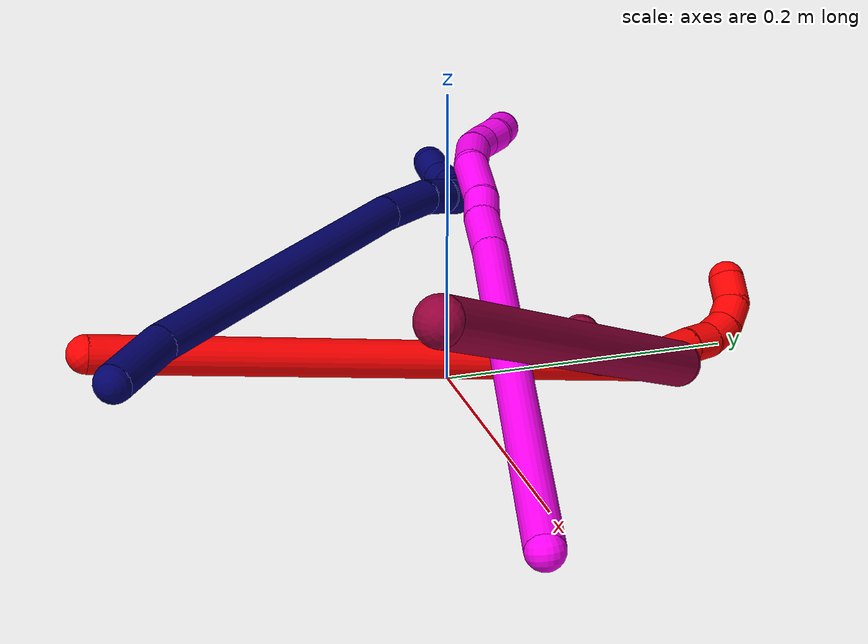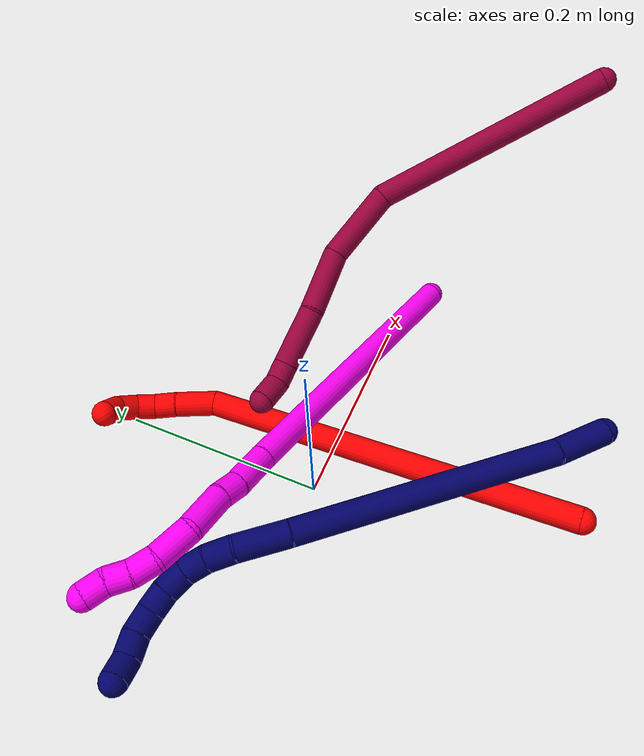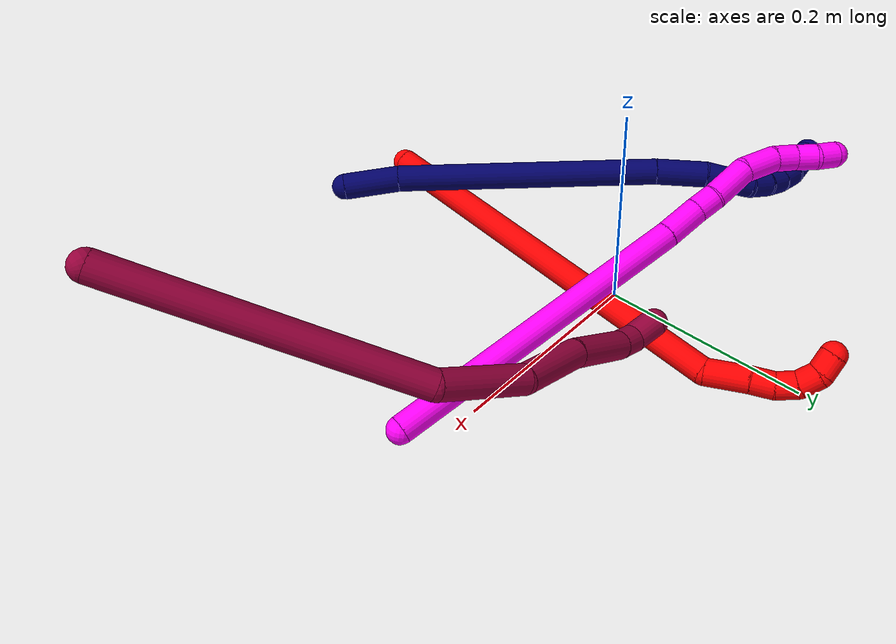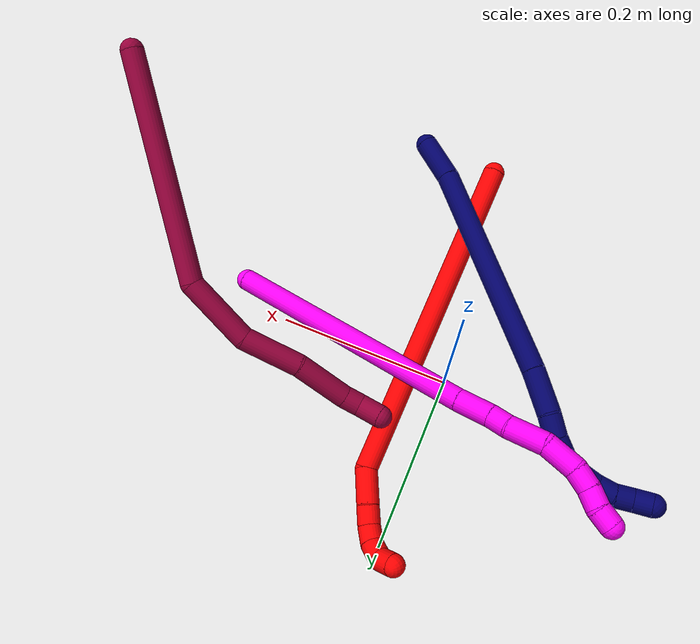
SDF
<sdf version="1.7">
 <world name="default">
  <model name="photoneo_s_sensor">
   <static>1</static>
   <pose>0 0 2 1.57079 1.57079 3.14159</pose>
   <link name="link">
    <inertial><mass>0.1</mass></inertial>
    <sensor name="sensor" type="depth">
     <update_rate>30</update_rate>
     <camera>
      <horizontal_fov>1.22</horizontal_fov>
      <image><width>1920</width><height>1200</height><format>B8G8R8</format></image>
      <clip><near>0.1</near><far>4</far></clip>
      <depth_camera><output>points</output></depth_camera>
     </camera>
     <plugin name="camera_plugin" filename="libgazebo_ros_depth_camera.so">
      <baseline>0.2</baseline>
      <alwaysOn>1</alwaysOn>
      <updateRate>0.0</updateRate>
      <cameraName>camera_ir</cameraName>
      <imageTopicName>/camera/color/image_raw</imageTopicName>
      <cameraInfoTopicName>/camera/color/camera_info</cameraInfoTopicName>
      <depthImageTopicName>/camera/depth/image_raw</depthImageTopicName>
      <depthImageCameraInfoTopicName>/camera/depth/camera_info</depthImageCameraInfoTopicName>
      <pointCloudTopicName>/camera/depth/points</pointCloudTopicName>
      <frameName>fr_optical</frameName>
      <pointCloudCutoff>0.1</pointCloudCutoff>
      <pointCloudCutoffMax>2.0</pointCloudCutoffMax>
      <distortionK1>0</distortionK1>
      <distortionK2>0</distortionK2>
      <distortionK3>0</distortionK3>
      <distortionT1>0</distortionT1>
      <distortionT2>0</distortionT2>
      <CxPrime>0</CxPrime>
      <Cx>0</Cx>
      <Cy>0</Cy>
      <focalLength>0</focalLength>
      <hackBaseline>0</hackBaseline>
     </plugin>
    </sensor>
   </link>
  </model>
  <model name="bin">
   <static>1</static>
   <link name="bottom">
    <collision name="collision-bottom">
     <pose>0 0 -0.01 0 -0 0</pose>
     <geometry><box><size>0.8 0.6 0.02</size></box></geometry>
     <surface>
      <friction><ode><mu>100</mu><mu2>100</mu2></ode></friction>
      <contact><collide_bitmask>65535</collide_bitmask></contact>
     </surface>
    </collision>
   </link>
   <link name="west_wall">
    <collision name="collision-west_wall">
     <pose>-0.41 0 0.1 0 -0 0</pose>
     <geometry><box><size>0.02 0.6 0.2</size></box></geometry>
     <surface>
      <friction><ode><mu>100</mu><mu2>100</mu2></ode></friction>
      <contact><collide_bitmask>65535</collide_bitmask></contact>
     </surface>
    </collision>
   </link>
   <link name="east_wall">
    <collision name="collision-east_wall">
     <pose>0.41 0 0.1 0 -0 0</pose>
     <geometry><box><size>0.02 0.6 0.2</size></box></geometry>
     <surface>
      <friction><ode><mu>100</mu><mu2>100</mu2></ode></friction>
      <contact><collide_bitmask>65535</collide_bitmask></contact>
     </surface>
    </collision>
   </link>
   <link name="south_wall">
    <collision name="collision-south_wall">
     <pose>0 -0.31 0.1 0 -0 0</pose>
     <geometry><box><size>0.8 0.02 0.2</size></box></geometry>
     <surface>
      <friction><ode><mu>100</mu><mu2>100</mu2></ode></friction>
      <contact><collide_bitmask>65535</collide_bitmask></contact>
     </surface>
    </collision>
   </link>
   <link name="north_wall">
    <collision name="collision-north_wall">
     <pose>0 0.31 0.1 0 -0 0</pose>
     <geometry><box><size>0.8 0.02 0.2</size></box></geometry>
     <surface>
      <friction><ode><mu>100</mu><mu2>100</mu2></ode></friction>
      <contact><collide_bitmask>65535</collide_bitmask></contact>
     </surface>
    </collision>
   </link>
  </model>
  <model name="2">
   <static>0</static>
   <link name="2">
    <collision name="collision-cylinder-e_1_1_4">
     <pose>0.033708 0.144693 0.116862 -0.891404 0.179288 -0.085835</pose>
     <geometry><cylinder><radius>0.0125</radius><length>0.378043</length></cylinder></geometry>
     <surface>
      <friction><ode><mu>1.16</mu><mu2>1.16</mu2><slip1>0</slip1><slip2>0</slip2></ode></friction>
      <contact><ode><kp>1e+06</kp><kd>1</kd><max_vel>0</max_vel><min_depth>0.001</min_depth></ode></contact>
     </surface>
    </collision>
    <visual name="visual-cylinder-e_1_1_4">
     <pose>0.033708 0.144693 0.116862 -0.891404 0.179288 -0.085835</pose>
     <geometry><cylinder><radius>0.0125</radius><length>0.378043</length></cylinder></geometry>
     <material><ambient>1 0 0 1</ambient></material>
    </visual>
    <collision name="collision-cylinder-e_2_4_5">
     <pose>0.061733 0.305767 0.243722 -1.02284 -0.287892 0.162339</pose>
     <geometry><cylinder><radius>0.0125</radius><length>0.040029</length></cylinder></geometry>
     <surface>
      <friction><ode><mu>1.16</mu><mu2>1.16</mu2><slip1>0</slip1><slip2>0</slip2></ode></friction>
      <contact><ode><kp>1e+06</kp><kd>1</kd><max_vel>0</max_vel><min_depth>0.001</min_depth></ode></contact>
     </surface>
    </collision>
    <visual name="visual-cylinder-e_2_4_5">
     <pose>0.061733 0.305767 0.243722 -1.02284 -0.287892 0.162339</pose>
     <geometry><cylinder><radius>0.0125</radius><length>0.040029</length></cylinder></geometry>
     <material><ambient>1 0 0 1</ambient></material>
    </visual>
    <collision name="collision-cylinder-e_3_5_6">
     <pose>0.053473 0.331629 0.258371 -1.11464 -0.239437 0.149659</pose>
     <geometry><cylinder><radius>0.0125</radius><length>0.02174</length></cylinder></geometry>
     <surface>
      <friction><ode><mu>1.16</mu><mu2>1.16</mu2><slip1>0</slip1><slip2>0</slip2></ode></friction>
      <contact><ode><kp>1e+06</kp><kd>1</kd><max_vel>0</max_vel><min_depth>0.001</min_depth></ode></contact>
     </surface>
    </collision>
    <visual name="visual-cylinder-e_3_5_6">
     <pose>0.053473 0.331629 0.258371 -1.11464 -0.239437 0.149659</pose>
     <geometry><cylinder><radius>0.0125</radius><length>0.02174</length></cylinder></geometry>
     <material><ambient>1 0 0 1</ambient></material>
    </visual>
    <collision name="collision-cylinder-e_4_6_7">
     <pose>0.046173 0.348214 0.268304 -0.931674 -0.489966 0.250063</pose>
     <geometry><cylinder><radius>0.0125</radius><length>0.020066</length></cylinder></geometry>
     <surface>
      <friction><ode><mu>1.16</mu><mu2>1.16</mu2><slip1>0</slip1><slip2>0</slip2></ode></friction>
      <contact><ode><kp>1e+06</kp><kd>1</kd><max_vel>0</max_vel><min_depth>0.001</min_depth></ode></contact>
     </surface>
    </collision>
    <visual name="visual-cylinder-e_4_6_7">
     <pose>0.046173 0.348214 0.268304 -0.931674 -0.489966 0.250063</pose>
     <geometry><cylinder><radius>0.0125</radius><length>0.020066</length></cylinder></geometry>
     <material><ambient>1 0 0 1</ambient></material>
    </visual>
    <collision name="collision-cylinder-e_5_7_8">
     <pose>0.033717 0.359426 0.278458 -0.700093 -0.881581 0.341105</pose>
     <geometry><cylinder><radius>0.0125</radius><length>0.020044</length></cylinder></geometry>
     <surface>
      <friction><ode><mu>1.16</mu><mu2>1.16</mu2><slip1>0</slip1><slip2>0</slip2></ode></friction>
      <contact><ode><kp>1e+06</kp><kd>1</kd><max_vel>0</max_vel><min_depth>0.001</min_depth></ode></contact>
     </surface>
    </collision>
    <visual name="visual-cylinder-e_5_7_8">
     <pose>0.033717 0.359426 0.278458 -0.700093 -0.881581 0.341105</pose>
     <geometry><cylinder><radius>0.0125</radius><length>0.020044</length></cylinder></geometry>
     <material><ambient>1 0 0 1</ambient></material>
    </visual>
    <collision name="collision-cylinder-e_6_8_2">
     <pose>0.016164 0.364057 0.285354 -0.254002 -1.36119 0.206033</pose>
     <geometry><cylinder><radius>0.0125</radius><length>0.020077</length></cylinder></geometry>
     <surface>
      <friction><ode><mu>1.16</mu><mu2>1.16</mu2><slip1>0</slip1><slip2>0</slip2></ode></friction>
      <contact><ode><kp>1e+06</kp><kd>1</kd><max_vel>0</max_vel><min_depth>0.001</min_depth></ode></contact>
     </surface>
    </collision>
    <visual name="visual-cylinder-e_6_8_2">
     <pose>0.016164 0.364057 0.285354 -0.254002 -1.36119 0.206033</pose>
     <geometry><cylinder><radius>0.0125</radius><length>0.020077</length></cylinder></geometry>
     <material><ambient>1 0 0 1</ambient></material>
    </visual>
    <collision name="collision-sphere-2">
     <pose>0.006345 0.364582 0.287376 0 -0 0</pose>
     <geometry><sphere><radius>0.0125</radius></sphere></geometry>
     <surface>
      <friction><ode><mu>1.16</mu><mu2>1.16</mu2><slip1>0</slip1><slip2>0</slip2></ode></friction>
      <contact><ode><kp>1e+06</kp><kd>1</kd><max_vel>0</max_vel><min_depth>0.001</min_depth></ode></contact>
     </surface>
    </collision>
    <visual name="visual-sphere-2">
     <pose>0.006345 0.364582 0.287376 0 -0 0</pose>
     <geometry><sphere><radius>0.0125</radius></sphere></geometry>
     <material><ambient>1 0 0 1</ambient></material>
    </visual>
    <collision name="collision-sphere-4">
     <pose>0.067416 0.289386 0.233725 0 -0 0</pose>
     <geometry><sphere><radius>0.0125</radius></sphere></geometry>
     <surface>
      <friction><ode><mu>1.16</mu><mu2>1.16</mu2><slip1>0</slip1><slip2>0</slip2></ode></friction>
      <contact><ode><kp>1e+06</kp><kd>1</kd><max_vel>0</max_vel><min_depth>0.001</min_depth></ode></contact>
     </surface>
    </collision>
    <visual name="visual-sphere-4">
     <pose>0.067416 0.289386 0.233725 0 -0 0</pose>
     <geometry><sphere><radius>0.0125</radius></sphere></geometry>
     <material><ambient>1 0 0 1</ambient></material>
    </visual>
    <collision name="collision-sphere-1">
     <geometry><sphere><radius>0.0125</radius></sphere></geometry>
     <surface>
      <friction><ode><mu>1.16</mu><mu2>1.16</mu2><slip1>0</slip1><slip2>0</slip2></ode></friction>
      <contact><ode><kp>1e+06</kp><kd>1</kd><max_vel>0</max_vel><min_depth>0.001</min_depth></ode></contact>
     </surface>
    </collision>
    <visual name="visual-sphere-1">
     <geometry><sphere><radius>0.0125</radius></sphere></geometry>
     <material><ambient>1 0 0 1</ambient></material>
    </visual>
    <collision name="collision-sphere-8">
     <pose>0.025983 0.363532 0.283333 0 -0 0</pose>
     <geometry><sphere><radius>0.0125</radius></sphere></geometry>
     <surface>
      <friction><ode><mu>1.16</mu><mu2>1.16</mu2><slip1>0</slip1><slip2>0</slip2></ode></friction>
      <contact><ode><kp>1e+06</kp><kd>1</kd><max_vel>0</max_vel><min_depth>0.001</min_depth></ode></contact>
     </surface>
    </collision>
    <visual name="visual-sphere-8">
     <pose>0.025983 0.363532 0.283333 0 -0 0</pose>
     <geometry><sphere><radius>0.0125</radius></sphere></geometry>
     <material><ambient>1 0 0 1</ambient></material>
    </visual>
    <collision name="collision-sphere-5">
     <pose>0.056051 0.322148 0.25372 0 -0 0</pose>
     <geometry><sphere><radius>0.0125</radius></sphere></geometry>
     <surface>
      <friction><ode><mu>1.16</mu><mu2>1.16</mu2><slip1>0</slip1><slip2>0</slip2></ode></friction>
      <contact><ode><kp>1e+06</kp><kd>1</kd><max_vel>0</max_vel><min_depth>0.001</min_depth></ode></contact>
     </surface>
    </collision>
    <visual name="visual-sphere-5">
     <pose>0.056051 0.322148 0.25372 0 -0 0</pose>
     <geometry><sphere><radius>0.0125</radius></sphere></geometry>
     <material><ambient>1 0 0 1</ambient></material>
    </visual>
    <collision name="collision-sphere-6">
     <pose>0.050895 0.341109 0.263023 0 -0 0</pose>
     <geometry><sphere><radius>0.0125</radius></sphere></geometry>
     <surface>
      <friction><ode><mu>1.16</mu><mu2>1.16</mu2><slip1>0</slip1><slip2>0</slip2></ode></friction>
      <contact><ode><kp>1e+06</kp><kd>1</kd><max_vel>0</max_vel><min_depth>0.001</min_depth></ode></contact>
     </surface>
    </collision>
    <visual name="visual-sphere-6">
     <pose>0.050895 0.341109 0.263023 0 -0 0</pose>
     <geometry><sphere><radius>0.0125</radius></sphere></geometry>
     <material><ambient>1 0 0 1</ambient></material>
    </visual>
    <collision name="collision-sphere-7">
     <pose>0.041452 0.355319 0.273584 0 -0 0</pose>
     <geometry><sphere><radius>0.0125</radius></sphere></geometry>
     <surface>
      <friction><ode><mu>1.16</mu><mu2>1.16</mu2><slip1>0</slip1><slip2>0</slip2></ode></friction>
      <contact><ode><kp>1e+06</kp><kd>1</kd><max_vel>0</max_vel><min_depth>0.001</min_depth></ode></contact>
     </surface>
    </collision>
    <visual name="visual-sphere-7">
     <pose>0.041452 0.355319 0.273584 0 -0 0</pose>
     <geometry><sphere><radius>0.0125</radius></sphere></geometry>
     <material><ambient>1 0 0 1</ambient></material>
    </visual>
    <inertial>
     <pose>0.036607 0.191301 0.152493 0 -0 0</pose>
     <mass>0.5</mass>
     <inertia>
      <ixx>0.00406</ixx>
      <ixy>0</ixy>
      <ixz>0</ixz>
      <iyy>0.002539</iyy>
      <iyz>0</iyz>
      <izz>-0.004244</izz>
     </inertia>
    </inertial>
   </link>
   <pose>0.035961 -0.245626 0.065422 -0.726664 0.592273 0.103583</pose>
  </model>
  <model name="7">
   <static>0</static>
   <link name="7">
    <collision name="collision-cylinder-e_1_1_4">
     <pose>-0.008893 0.000802 -0.024605 -3.10902 -0.346657 2.95607</pose>
     <geometry><cylinder><radius>0.0125</radius><length>0.05235</length></cylinder></geometry>
     <surface>
      <friction><ode><mu>1.16</mu><mu2>1.16</mu2><slip1>0</slip1><slip2>0</slip2></ode></friction>
      <contact><ode><kp>1e+06</kp><kd>1</kd><max_vel>0</max_vel><min_depth>0.001</min_depth></ode></contact>
     </surface>
    </collision>
    <visual name="visual-cylinder-e_1_1_4">
     <pose>-0.008893 0.000802 -0.024605 -3.10902 -0.346657 2.95607</pose>
     <geometry><cylinder><radius>0.0125</radius><length>0.05235</length></cylinder></geometry>
     <material><ambient>0.003922 0 0.403922 1</ambient></material>
    </visual>
    <collision name="collision-cylinder-e_2_4_5">
     <pose>-0.066976 0.021495 -0.162037 -2.96708 -0.40555 2.33705</pose>
     <geometry><cylinder><radius>0.0125</radius><length>0.249361</length></cylinder></geometry>
     <surface>
      <friction><ode><mu>1.16</mu><mu2>1.16</mu2><slip1>0</slip1><slip2>0</slip2></ode></friction>
      <contact><ode><kp>1e+06</kp><kd>1</kd><max_vel>0</max_vel><min_depth>0.001</min_depth></ode></contact>
     </surface>
    </collision>
    <visual name="visual-cylinder-e_2_4_5">
     <pose>-0.066976 0.021495 -0.162037 -2.96708 -0.40555 2.33705</pose>
     <geometry><cylinder><radius>0.0125</radius><length>0.249361</length></cylinder></geometry>
     <material><ambient>0.003922 0 0.403922 1</ambient></material>
    </visual>
    <collision name="collision-cylinder-e_3_5_6">
     <pose>-0.125432 0.047288 -0.29646 -2.87487 -0.39244 1.95422</pose>
     <geometry><cylinder><radius>0.0125</radius><length>0.048459</length></cylinder></geometry>
     <surface>
      <friction><ode><mu>1.16</mu><mu2>1.16</mu2><slip1>0</slip1><slip2>0</slip2></ode></friction>
      <contact><ode><kp>1e+06</kp><kd>1</kd><max_vel>0</max_vel><min_depth>0.001</min_depth></ode></contact>
     </surface>
    </collision>
    <visual name="visual-cylinder-e_3_5_6">
     <pose>-0.125432 0.047288 -0.29646 -2.87487 -0.39244 1.95422</pose>
     <geometry><cylinder><radius>0.0125</radius><length>0.048459</length></cylinder></geometry>
     <material><ambient>0.003922 0 0.403922 1</ambient></material>
    </visual>
    <collision name="collision-cylinder-e_4_6_7">
     <pose>-0.137747 0.058061 -0.328948 -2.72094 -0.250146 1.0645</pose>
     <geometry><cylinder><radius>0.0125</radius><length>0.024631</length></cylinder></geometry>
     <surface>
      <friction><ode><mu>1.16</mu><mu2>1.16</mu2><slip1>0</slip1><slip2>0</slip2></ode></friction>
      <contact><ode><kp>1e+06</kp><kd>1</kd><max_vel>0</max_vel><min_depth>0.001</min_depth></ode></contact>
     </surface>
    </collision>
    <visual name="visual-cylinder-e_4_6_7">
     <pose>-0.137747 0.058061 -0.328948 -2.72094 -0.250146 1.0645</pose>
     <geometry><cylinder><radius>0.0125</radius><length>0.024631</length></cylinder></geometry>
     <material><ambient>0.003922 0 0.403922 1</ambient></material>
    </visual>
    <collision name="collision-cylinder-e_5_7_8">
     <pose>-0.141629 0.066634 -0.34988 -2.78848 -0.077766 0.42938</pose>
     <geometry><cylinder><radius>0.0125</radius><length>0.021465</length></cylinder></geometry>
     <surface>
      <friction><ode><mu>1.16</mu><mu2>1.16</mu2><slip1>0</slip1><slip2>0</slip2></ode></friction>
      <contact><ode><kp>1e+06</kp><kd>1</kd><max_vel>0</max_vel><min_depth>0.001</min_depth></ode></contact>
     </surface>
    </collision>
    <visual name="visual-cylinder-e_5_7_8">
     <pose>-0.141629 0.066634 -0.34988 -2.78848 -0.077766 0.42938</pose>
     <geometry><cylinder><radius>0.0125</radius><length>0.021465</length></cylinder></geometry>
     <material><ambient>0.003922 0 0.403922 1</ambient></material>
    </visual>
    <collision name="collision-cylinder-e_6_8_9">
     <pose>-0.141553 0.07096 -0.37087 -3.08454 0.082757 -1.93467</pose>
     <geometry><cylinder><radius>0.0125</radius><length>0.022012</length></cylinder></geometry>
     <surface>
      <friction><ode><mu>1.16</mu><mu2>1.16</mu2><slip1>0</slip1><slip2>0</slip2></ode></friction>
      <contact><ode><kp>1e+06</kp><kd>1</kd><max_vel>0</max_vel><min_depth>0.001</min_depth></ode></contact>
     </surface>
    </collision>
    <visual name="visual-cylinder-e_6_8_9">
     <pose>-0.141553 0.07096 -0.37087 -3.08454 0.082757 -1.93467</pose>
     <geometry><cylinder><radius>0.0125</radius><length>0.022012</length></cylinder></geometry>
     <material><ambient>0.003922 0 0.403922 1</ambient></material>
    </visual>
    <collision name="collision-cylinder-e_7_9_10">
     <pose>-0.13846 0.07068 -0.391551 3.04883 0.219787 2.34523</pose>
     <geometry><cylinder><radius>0.0125</radius><length>0.020025</length></cylinder></geometry>
     <surface>
      <friction><ode><mu>1.16</mu><mu2>1.16</mu2><slip1>0</slip1><slip2>0</slip2></ode></friction>
      <contact><ode><kp>1e+06</kp><kd>1</kd><max_vel>0</max_vel><min_depth>0.001</min_depth></ode></contact>
     </surface>
    </collision>
    <visual name="visual-cylinder-e_7_9_10">
     <pose>-0.13846 0.07068 -0.391551 3.04883 0.219787 2.34523</pose>
     <geometry><cylinder><radius>0.0125</radius><length>0.020025</length></cylinder></geometry>
     <material><ambient>0.003922 0 0.403922 1</ambient></material>
    </visual>
    <collision name="collision-cylinder-e_8_10_11">
     <pose>-0.134093 0.067058 -0.411134 2.87259 0.210544 1.32592</pose>
     <geometry><cylinder><radius>0.0125</radius><length>0.020904</length></cylinder></geometry>
     <surface>
      <friction><ode><mu>1.16</mu><mu2>1.16</mu2><slip1>0</slip1><slip2>0</slip2></ode></friction>
      <contact><ode><kp>1e+06</kp><kd>1</kd><max_vel>0</max_vel><min_depth>0.001</min_depth></ode></contact>
     </surface>
    </collision>
    <visual name="visual-cylinder-e_8_10_11">
     <pose>-0.134093 0.067058 -0.411134 2.87259 0.210544 1.32592</pose>
     <geometry><cylinder><radius>0.0125</radius><length>0.020904</length></cylinder></geometry>
     <material><ambient>0.003922 0 0.403922 1</ambient></material>
    </visual>
    <collision name="collision-cylinder-e_9_11_12">
     <pose>-0.128099 0.060031 -0.429377 2.66698 0.383811 1.35353</pose>
     <geometry><cylinder><radius>0.0125</radius><length>0.020346</length></cylinder></geometry>
     <surface>
      <friction><ode><mu>1.16</mu><mu2>1.16</mu2><slip1>0</slip1><slip2>0</slip2></ode></friction>
      <contact><ode><kp>1e+06</kp><kd>1</kd><max_vel>0</max_vel><min_depth>0.001</min_depth></ode></contact>
     </surface>
    </collision>
    <visual name="visual-cylinder-e_9_11_12">
     <pose>-0.128099 0.060031 -0.429377 2.66698 0.383811 1.35353</pose>
     <geometry><cylinder><radius>0.0125</radius><length>0.020346</length></cylinder></geometry>
     <material><ambient>0.003922 0 0.403922 1</ambient></material>
    </visual>
    <collision name="collision-cylinder-e_10_12_2">
     <pose>-0.123467 0.049625 -0.445934 2.50037 0.08059 0.24164</pose>
     <geometry><cylinder><radius>0.0125</radius><length>0.020447</length></cylinder></geometry>
     <surface>
      <friction><ode><mu>1.16</mu><mu2>1.16</mu2><slip1>0</slip1><slip2>0</slip2></ode></friction>
      <contact><ode><kp>1e+06</kp><kd>1</kd><max_vel>0</max_vel><min_depth>0.001</min_depth></ode></contact>
     </surface>
    </collision>
    <visual name="visual-cylinder-e_10_12_2">
     <pose>-0.123467 0.049625 -0.445934 2.50037 0.08059 0.24164</pose>
     <geometry><cylinder><radius>0.0125</radius><length>0.020447</length></cylinder></geometry>
     <material><ambient>0.003922 0 0.403922 1</ambient></material>
    </visual>
    <collision name="collision-sphere-2">
     <pose>-0.122644 0.043529 -0.4541 0 -0 0</pose>
     <geometry><sphere><radius>0.0125</radius></sphere></geometry>
     <surface>
      <friction><ode><mu>1.16</mu><mu2>1.16</mu2><slip1>0</slip1><slip2>0</slip2></ode></friction>
      <contact><ode><kp>1e+06</kp><kd>1</kd><max_vel>0</max_vel><min_depth>0.001</min_depth></ode></contact>
     </surface>
    </collision>
    <visual name="visual-sphere-2">
     <pose>-0.122644 0.043529 -0.4541 0 -0 0</pose>
     <geometry><sphere><radius>0.0125</radius></sphere></geometry>
     <material><ambient>0.003922 0 0.403922 1</ambient></material>
    </visual>
    <collision name="collision-sphere-12">
     <pose>-0.12429 0.05572 -0.437768 0 -0 0</pose>
     <geometry><sphere><radius>0.0125</radius></sphere></geometry>
     <surface>
      <friction><ode><mu>1.16</mu><mu2>1.16</mu2><slip1>0</slip1><slip2>0</slip2></ode></friction>
      <contact><ode><kp>1e+06</kp><kd>1</kd><max_vel>0</max_vel><min_depth>0.001</min_depth></ode></contact>
     </surface>
    </collision>
    <visual name="visual-sphere-12">
     <pose>-0.12429 0.05572 -0.437768 0 -0 0</pose>
     <geometry><sphere><radius>0.0125</radius></sphere></geometry>
     <material><ambient>0.003922 0 0.403922 1</ambient></material>
    </visual>
    <collision name="collision-sphere-11">
     <pose>-0.131909 0.064342 -0.420987 0 -0 0</pose>
     <geometry><sphere><radius>0.0125</radius></sphere></geometry>
     <surface>
      <friction><ode><mu>1.16</mu><mu2>1.16</mu2><slip1>0</slip1><slip2>0</slip2></ode></friction>
      <contact><ode><kp>1e+06</kp><kd>1</kd><max_vel>0</max_vel><min_depth>0.001</min_depth></ode></contact>
     </surface>
    </collision>
    <visual name="visual-sphere-11">
     <pose>-0.131909 0.064342 -0.420987 0 -0 0</pose>
     <geometry><sphere><radius>0.0125</radius></sphere></geometry>
     <material><ambient>0.003922 0 0.403922 1</ambient></material>
    </visual>
    <collision name="collision-sphere-10">
     <pose>-0.136277 0.069775 -0.40128 0 -0 0</pose>
     <geometry><sphere><radius>0.0125</radius></sphere></geometry>
     <surface>
      <friction><ode><mu>1.16</mu><mu2>1.16</mu2><slip1>0</slip1><slip2>0</slip2></ode></friction>
      <contact><ode><kp>1e+06</kp><kd>1</kd><max_vel>0</max_vel><min_depth>0.001</min_depth></ode></contact>
     </surface>
    </collision>
    <visual name="visual-sphere-10">
     <pose>-0.136277 0.069775 -0.40128 0 -0 0</pose>
     <geometry><sphere><radius>0.0125</radius></sphere></geometry>
     <material><ambient>0.003922 0 0.403922 1</ambient></material>
    </visual>
    <collision name="collision-sphere-9">
     <pose>-0.140643 0.071585 -0.381821 0 -0 0</pose>
     <geometry><sphere><radius>0.0125</radius></sphere></geometry>
     <surface>
      <friction><ode><mu>1.16</mu><mu2>1.16</mu2><slip1>0</slip1><slip2>0</slip2></ode></friction>
      <contact><ode><kp>1e+06</kp><kd>1</kd><max_vel>0</max_vel><min_depth>0.001</min_depth></ode></contact>
     </surface>
    </collision>
    <visual name="visual-sphere-9">
     <pose>-0.140643 0.071585 -0.381821 0 -0 0</pose>
     <geometry><sphere><radius>0.0125</radius></sphere></geometry>
     <material><ambient>0.003922 0 0.403922 1</ambient></material>
    </visual>
    <collision name="collision-sphere-4">
     <pose>-0.017786 0.001603 -0.04921 0 -0 0</pose>
     <geometry><sphere><radius>0.0125</radius></sphere></geometry>
     <surface>
      <friction><ode><mu>1.16</mu><mu2>1.16</mu2><slip1>0</slip1><slip2>0</slip2></ode></friction>
      <contact><ode><kp>1e+06</kp><kd>1</kd><max_vel>0</max_vel><min_depth>0.001</min_depth></ode></contact>
     </surface>
    </collision>
    <visual name="visual-sphere-4">
     <pose>-0.017786 0.001603 -0.04921 0 -0 0</pose>
     <geometry><sphere><radius>0.0125</radius></sphere></geometry>
     <material><ambient>0.003922 0 0.403922 1</ambient></material>
    </visual>
    <collision name="collision-sphere-1">
     <geometry><sphere><radius>0.0125</radius></sphere></geometry>
     <surface>
      <friction><ode><mu>1.16</mu><mu2>1.16</mu2><slip1>0</slip1><slip2>0</slip2></ode></friction>
      <contact><ode><kp>1e+06</kp><kd>1</kd><max_vel>0</max_vel><min_depth>0.001</min_depth></ode></contact>
     </surface>
    </collision>
    <visual name="visual-sphere-1">
     <geometry><sphere><radius>0.0125</radius></sphere></geometry>
     <material><ambient>0.003922 0 0.403922 1</ambient></material>
    </visual>
    <collision name="collision-sphere-8">
     <pose>-0.142463 0.070334 -0.35992 0 -0 0</pose>
     <geometry><sphere><radius>0.0125</radius></sphere></geometry>
     <surface>
      <friction><ode><mu>1.16</mu><mu2>1.16</mu2><slip1>0</slip1><slip2>0</slip2></ode></friction>
      <contact><ode><kp>1e+06</kp><kd>1</kd><max_vel>0</max_vel><min_depth>0.001</min_depth></ode></contact>
     </surface>
    </collision>
    <visual name="visual-sphere-8">
     <pose>-0.142463 0.070334 -0.35992 0 -0 0</pose>
     <geometry><sphere><radius>0.0125</radius></sphere></geometry>
     <material><ambient>0.003922 0 0.403922 1</ambient></material>
    </visual>
    <collision name="collision-sphere-5">
     <pose>-0.116165 0.041387 -0.274864 0 -0 0</pose>
     <geometry><sphere><radius>0.0125</radius></sphere></geometry>
     <surface>
      <friction><ode><mu>1.16</mu><mu2>1.16</mu2><slip1>0</slip1><slip2>0</slip2></ode></friction>
      <contact><ode><kp>1e+06</kp><kd>1</kd><max_vel>0</max_vel><min_depth>0.001</min_depth></ode></contact>
     </surface>
    </collision>
    <visual name="visual-sphere-5">
     <pose>-0.116165 0.041387 -0.274864 0 -0 0</pose>
     <geometry><sphere><radius>0.0125</radius></sphere></geometry>
     <material><ambient>0.003922 0 0.403922 1</ambient></material>
    </visual>
    <collision name="collision-sphere-6">
     <pose>-0.134698 0.053188 -0.318056 0 -0 0</pose>
     <geometry><sphere><radius>0.0125</radius></sphere></geometry>
     <surface>
      <friction><ode><mu>1.16</mu><mu2>1.16</mu2><slip1>0</slip1><slip2>0</slip2></ode></friction>
      <contact><ode><kp>1e+06</kp><kd>1</kd><max_vel>0</max_vel><min_depth>0.001</min_depth></ode></contact>
     </surface>
    </collision>
    <visual name="visual-sphere-6">
     <pose>-0.134698 0.053188 -0.318056 0 -0 0</pose>
     <geometry><sphere><radius>0.0125</radius></sphere></geometry>
     <material><ambient>0.003922 0 0.403922 1</ambient></material>
    </visual>
    <collision name="collision-sphere-7">
     <pose>-0.140795 0.062934 -0.33984 0 -0 0</pose>
     <geometry><sphere><radius>0.0125</radius></sphere></geometry>
     <surface>
      <friction><ode><mu>1.16</mu><mu2>1.16</mu2><slip1>0</slip1><slip2>0</slip2></ode></friction>
      <contact><ode><kp>1e+06</kp><kd>1</kd><max_vel>0</max_vel><min_depth>0.001</min_depth></ode></contact>
     </surface>
    </collision>
    <visual name="visual-sphere-7">
     <pose>-0.140795 0.062934 -0.33984 0 -0 0</pose>
     <geometry><sphere><radius>0.0125</radius></sphere></geometry>
     <material><ambient>0.003922 0 0.403922 1</ambient></material>
    </visual>
    <inertial>
     <pose>-0.087001 0.034338 -0.22825 0 -0 0</pose>
     <mass>0.5</mass>
     <inertia>
      <ixx>2.6e-05</ixx>
      <ixy>0</ixy>
      <ixz>0</ixz>
      <iyy>0.001853</iyy>
      <iyz>0</iyz>
      <izz>0.000276</izz>
     </inertia>
    </inertial>
   </link>
   <pose>0.120593 -0.240599 0.082202 -1.39082 0.725931 -1.88784</pose>
  </model>
  <model name="8">
   <static>0</static>
   <link name="8">
    <collision name="collision-cylinder-e_1_1_4">
     <pose>-0.067367 -0.055344 -0.088164 2.58102 -0.574377 -1.59649</pose>
     <geometry><cylinder><radius>0.0125</radius><length>0.247986</length></cylinder></geometry>
     <surface>
      <friction><ode><mu>1.16</mu><mu2>1.16</mu2><slip1>0</slip1><slip2>0</slip2></ode></friction>
      <contact><ode><kp>1e+06</kp><kd>1</kd><max_vel>0</max_vel><min_depth>0.001</min_depth></ode></contact>
     </surface>
    </collision>
    <visual name="visual-cylinder-e_1_1_4">
     <pose>-0.067367 -0.055344 -0.088164 2.58102 -0.574377 -1.59649</pose>
     <geometry><cylinder><radius>0.0125</radius><length>0.247986</length></cylinder></geometry>
     <material><ambient>0.584314 0 0.227451 1</ambient></material>
    </visual>
    <collision name="collision-cylinder-e_2_4_5">
     <pose>-0.146086 -0.114211 -0.213836 3.04795 -0.29269 -2.52602</pose>
     <geometry><cylinder><radius>0.0125</radius><length>0.07869</length></cylinder></geometry>
     <surface>
      <friction><ode><mu>1.16</mu><mu2>1.16</mu2><slip1>0</slip1><slip2>0</slip2></ode></friction>
      <contact><ode><kp>1e+06</kp><kd>1</kd><max_vel>0</max_vel><min_depth>0.001</min_depth></ode></contact>
     </surface>
    </collision>
    <visual name="visual-cylinder-e_2_4_5">
     <pose>-0.146086 -0.114211 -0.213836 3.04795 -0.29269 -2.52602</pose>
     <geometry><cylinder><radius>0.0125</radius><length>0.07869</length></cylinder></geometry>
     <material><ambient>0.584314 0 0.227451 1</ambient></material>
    </visual>
    <collision name="collision-cylinder-e_3_5_6">
     <pose>-0.15923 -0.111977 -0.283692 -2.96547 -0.054466 0.598535</pose>
     <geometry><cylinder><radius>0.0125</radius><length>0.065813</length></cylinder></geometry>
     <surface>
      <friction><ode><mu>1.16</mu><mu2>1.16</mu2><slip1>0</slip1><slip2>0</slip2></ode></friction>
      <contact><ode><kp>1e+06</kp><kd>1</kd><max_vel>0</max_vel><min_depth>0.001</min_depth></ode></contact>
     </surface>
    </collision>
    <visual name="visual-cylinder-e_3_5_6">
     <pose>-0.15923 -0.111977 -0.283692 -2.96547 -0.054466 0.598535</pose>
     <geometry><cylinder><radius>0.0125</radius><length>0.065813</length></cylinder></geometry>
     <material><ambient>0.584314 0 0.227451 1</ambient></material>
    </visual>
    <collision name="collision-cylinder-e_4_6_7">
     <pose>-0.168317 -0.102092 -0.345322 -3.00154 -0.241919 2.09488</pose>
     <geometry><cylinder><radius>0.0125</radius><length>0.060914</length></cylinder></geometry>
     <surface>
      <friction><ode><mu>1.16</mu><mu2>1.16</mu2><slip1>0</slip1><slip2>0</slip2></ode></friction>
      <contact><ode><kp>1e+06</kp><kd>1</kd><max_vel>0</max_vel><min_depth>0.001</min_depth></ode></contact>
     </surface>
    </collision>
    <visual name="visual-cylinder-e_4_6_7">
     <pose>-0.168317 -0.102092 -0.345322 -3.00154 -0.241919 2.09488</pose>
     <geometry><cylinder><radius>0.0125</radius><length>0.060914</length></cylinder></geometry>
     <material><ambient>0.584314 0 0.227451 1</ambient></material>
    </visual>
    <collision name="collision-cylinder-e_5_7_8">
     <pose>-0.176181 -0.09668 -0.38466 -3.01456 -0.055895 0.82822</pose>
     <geometry><cylinder><radius>0.0125</radius><length>0.020309</length></cylinder></geometry>
     <surface>
      <friction><ode><mu>1.16</mu><mu2>1.16</mu2><slip1>0</slip1><slip2>0</slip2></ode></friction>
      <contact><ode><kp>1e+06</kp><kd>1</kd><max_vel>0</max_vel><min_depth>0.001</min_depth></ode></contact>
     </surface>
    </collision>
    <visual name="visual-cylinder-e_5_7_8">
     <pose>-0.176181 -0.09668 -0.38466 -3.01456 -0.055895 0.82822</pose>
     <geometry><cylinder><radius>0.0125</radius><length>0.020309</length></cylinder></geometry>
     <material><ambient>0.584314 0 0.227451 1</ambient></material>
    </visual>
    <collision name="collision-cylinder-e_6_8_2">
     <pose>-0.173578 -0.097246 -0.407337 2.99598 0.243632 2.067</pose>
     <geometry><cylinder><radius>0.0125</radius><length>0.026287</length></cylinder></geometry>
     <surface>
      <friction><ode><mu>1.16</mu><mu2>1.16</mu2><slip1>0</slip1><slip2>0</slip2></ode></friction>
      <contact><ode><kp>1e+06</kp><kd>1</kd><max_vel>0</max_vel><min_depth>0.001</min_depth></ode></contact>
     </surface>
    </collision>
    <visual name="visual-cylinder-e_6_8_2">
     <pose>-0.173578 -0.097246 -0.407337 2.99598 0.243632 2.067</pose>
     <geometry><cylinder><radius>0.0125</radius><length>0.026287</length></cylinder></geometry>
     <material><ambient>0.584314 0 0.227451 1</ambient></material>
    </visual>
    <collision name="collision-sphere-2">
     <pose>-0.170407 -0.099097 -0.419958 0 -0 0</pose>
     <geometry><sphere><radius>0.0125</radius></sphere></geometry>
     <surface>
      <friction><ode><mu>1.16</mu><mu2>1.16</mu2><slip1>0</slip1><slip2>0</slip2></ode></friction>
      <contact><ode><kp>1e+06</kp><kd>1</kd><max_vel>0</max_vel><min_depth>0.001</min_depth></ode></contact>
     </surface>
    </collision>
    <visual name="visual-sphere-2">
     <pose>-0.170407 -0.099097 -0.419958 0 -0 0</pose>
     <geometry><sphere><radius>0.0125</radius></sphere></geometry>
     <material><ambient>0.584314 0 0.227451 1</ambient></material>
    </visual>
    <collision name="collision-sphere-4">
     <pose>-0.134734 -0.110689 -0.176329 0 -0 0</pose>
     <geometry><sphere><radius>0.0125</radius></sphere></geometry>
     <surface>
      <friction><ode><mu>1.16</mu><mu2>1.16</mu2><slip1>0</slip1><slip2>0</slip2></ode></friction>
      <contact><ode><kp>1e+06</kp><kd>1</kd><max_vel>0</max_vel><min_depth>0.001</min_depth></ode></contact>
     </surface>
    </collision>
    <visual name="visual-sphere-4">
     <pose>-0.134734 -0.110689 -0.176329 0 -0 0</pose>
     <geometry><sphere><radius>0.0125</radius></sphere></geometry>
     <material><ambient>0.584314 0 0.227451 1</ambient></material>
    </visual>
    <collision name="collision-sphere-1">
     <geometry><sphere><radius>0.0125</radius></sphere></geometry>
     <surface>
      <friction><ode><mu>1.16</mu><mu2>1.16</mu2><slip1>0</slip1><slip2>0</slip2></ode></friction>
      <contact><ode><kp>1e+06</kp><kd>1</kd><max_vel>0</max_vel><min_depth>0.001</min_depth></ode></contact>
     </surface>
    </collision>
    <visual name="visual-sphere-1">
     <geometry><sphere><radius>0.0125</radius></sphere></geometry>
     <material><ambient>0.584314 0 0.227451 1</ambient></material>
    </visual>
    <collision name="collision-sphere-8">
     <pose>-0.176749 -0.095395 -0.394717 0 -0 0</pose>
     <geometry><sphere><radius>0.0125</radius></sphere></geometry>
     <surface>
      <friction><ode><mu>1.16</mu><mu2>1.16</mu2><slip1>0</slip1><slip2>0</slip2></ode></friction>
      <contact><ode><kp>1e+06</kp><kd>1</kd><max_vel>0</max_vel><min_depth>0.001</min_depth></ode></contact>
     </surface>
    </collision>
    <visual name="visual-sphere-8">
     <pose>-0.176749 -0.095395 -0.394717 0 -0 0</pose>
     <geometry><sphere><radius>0.0125</radius></sphere></geometry>
     <material><ambient>0.584314 0 0.227451 1</ambient></material>
    </visual>
    <collision name="collision-sphere-5">
     <pose>-0.157438 -0.117734 -0.251342 0 -0 0</pose>
     <geometry><sphere><radius>0.0125</radius></sphere></geometry>
     <surface>
      <friction><ode><mu>1.16</mu><mu2>1.16</mu2><slip1>0</slip1><slip2>0</slip2></ode></friction>
      <contact><ode><kp>1e+06</kp><kd>1</kd><max_vel>0</max_vel><min_depth>0.001</min_depth></ode></contact>
     </surface>
    </collision>
    <visual name="visual-sphere-5">
     <pose>-0.157438 -0.117734 -0.251342 0 -0 0</pose>
     <geometry><sphere><radius>0.0125</radius></sphere></geometry>
     <material><ambient>0.584314 0 0.227451 1</ambient></material>
    </visual>
    <collision name="collision-sphere-6">
     <pose>-0.161021 -0.10622 -0.316041 0 -0 0</pose>
     <geometry><sphere><radius>0.0125</radius></sphere></geometry>
     <surface>
      <friction><ode><mu>1.16</mu><mu2>1.16</mu2><slip1>0</slip1><slip2>0</slip2></ode></friction>
      <contact><ode><kp>1e+06</kp><kd>1</kd><max_vel>0</max_vel><min_depth>0.001</min_depth></ode></contact>
     </surface>
    </collision>
    <visual name="visual-sphere-6">
     <pose>-0.161021 -0.10622 -0.316041 0 -0 0</pose>
     <geometry><sphere><radius>0.0125</radius></sphere></geometry>
     <material><ambient>0.584314 0 0.227451 1</ambient></material>
    </visual>
    <collision name="collision-sphere-7">
     <pose>-0.175614 -0.097964 -0.374603 0 -0 0</pose>
     <geometry><sphere><radius>0.0125</radius></sphere></geometry>
     <surface>
      <friction><ode><mu>1.16</mu><mu2>1.16</mu2><slip1>0</slip1><slip2>0</slip2></ode></friction>
      <contact><ode><kp>1e+06</kp><kd>1</kd><max_vel>0</max_vel><min_depth>0.001</min_depth></ode></contact>
     </surface>
    </collision>
    <visual name="visual-sphere-7">
     <pose>-0.175614 -0.097964 -0.374603 0 -0 0</pose>
     <geometry><sphere><radius>0.0125</radius></sphere></geometry>
     <material><ambient>0.584314 0 0.227451 1</ambient></material>
    </visual>
    <inertial>
     <pose>-0.11415 -0.08164 -0.193832 0 -0 0</pose>
     <mass>0.5</mass>
     <inertia>
      <ixx>-0.001127</ixx>
      <ixy>0</ixy>
      <ixz>0</ixz>
      <iyy>-0.000647</iyy>
      <iyz>0</iyz>
      <izz>0.00125</izz>
     </inertia>
    </inertial>
   </link>
   <pose>0.418125 -0.135429 0.227755 -1.17306 -1.08222 -2.05182</pose>
  </model>
  <model name="10">
   <static>0</static>
   <link name="10">
    <collision name="collision-cylinder-e_1_1_4">
     <pose>-0.129235 0.001249 0.074873 -0.016685 -1.04563 0.009616</pose>
     <geometry><cylinder><radius>0.0125</radius><length>0.298726</length></cylinder></geometry>
     <surface>
      <friction><ode><mu>1.16</mu><mu2>1.16</mu2><slip1>0</slip1><slip2>0</slip2></ode></friction>
      <contact><ode><kp>1e+06</kp><kd>1</kd><max_vel>0</max_vel><min_depth>0.001</min_depth></ode></contact>
     </surface>
    </collision>
    <visual name="visual-cylinder-e_1_1_4">
     <pose>-0.129235 0.001249 0.074873 -0.016685 -1.04563 0.009616</pose>
     <geometry><cylinder><radius>0.0125</radius><length>0.298726</length></cylinder></geometry>
     <material><ambient>1 0 0.964706 1</ambient></material>
    </visual>
    <collision name="collision-cylinder-e_2_4_5">
     <pose>-0.274843 0.001744 0.160057 0.073034 -1.00759 -0.040272</pose>
     <geometry><cylinder><radius>0.0125</radius><length>0.038725</length></cylinder></geometry>
     <surface>
      <friction><ode><mu>1.16</mu><mu2>1.16</mu2><slip1>0</slip1><slip2>0</slip2></ode></friction>
      <contact><ode><kp>1e+06</kp><kd>1</kd><max_vel>0</max_vel><min_depth>0.001</min_depth></ode></contact>
     </surface>
    </collision>
    <visual name="visual-cylinder-e_2_4_5">
     <pose>-0.274843 0.001744 0.160057 0.073034 -1.00759 -0.040272</pose>
     <geometry><cylinder><radius>0.0125</radius><length>0.038725</length></cylinder></geometry>
     <material><ambient>1 0 0.964706 1</ambient></material>
    </visual>
    <collision name="collision-cylinder-e_3_5_6">
     <pose>-0.299776 0.002167 0.176943 -0.177009 -0.908139 0.086568</pose>
     <geometry><cylinder><radius>0.0125</radius><length>0.021719</length></cylinder></geometry>
     <surface>
      <friction><ode><mu>1.16</mu><mu2>1.16</mu2><slip1>0</slip1><slip2>0</slip2></ode></friction>
      <contact><ode><kp>1e+06</kp><kd>1</kd><max_vel>0</max_vel><min_depth>0.001</min_depth></ode></contact>
     </surface>
    </collision>
    <visual name="visual-cylinder-e_3_5_6">
     <pose>-0.299776 0.002167 0.176943 -0.177009 -0.908139 0.086568</pose>
     <geometry><cylinder><radius>0.0125</radius><length>0.021719</length></cylinder></geometry>
     <material><ambient>1 0 0.964706 1</ambient></material>
    </visual>
    <collision name="collision-cylinder-e_4_6_7">
     <pose>-0.32594 0.001918 0.194924 0.124299 -0.992387 -0.067353</pose>
     <geometry><cylinder><radius>0.0125</radius><length>0.042045</length></cylinder></geometry>
     <surface>
      <friction><ode><mu>1.16</mu><mu2>1.16</mu2><slip1>0</slip1><slip2>0</slip2></ode></friction>
      <contact><ode><kp>1e+06</kp><kd>1</kd><max_vel>0</max_vel><min_depth>0.001</min_depth></ode></contact>
     </surface>
    </collision>
    <visual name="visual-cylinder-e_4_6_7">
     <pose>-0.32594 0.001918 0.194924 0.124299 -0.992387 -0.067353</pose>
     <geometry><cylinder><radius>0.0125</radius><length>0.042045</length></cylinder></geometry>
     <material><ambient>1 0 0.964706 1</ambient></material>
    </visual>
    <collision name="collision-cylinder-e_5_7_8">
     <pose>-0.360297 0.002786 0.211899 -0.390398 -1.22565 0.27627</pose>
     <geometry><cylinder><radius>0.0125</radius><length>0.035607</length></cylinder></geometry>
     <surface>
      <friction><ode><mu>1.16</mu><mu2>1.16</mu2><slip1>0</slip1><slip2>0</slip2></ode></friction>
      <contact><ode><kp>1e+06</kp><kd>1</kd><max_vel>0</max_vel><min_depth>0.001</min_depth></ode></contact>
     </surface>
    </collision>
    <visual name="visual-cylinder-e_5_7_8">
     <pose>-0.360297 0.002786 0.211899 -0.390398 -1.22565 0.27627</pose>
     <geometry><cylinder><radius>0.0125</radius><length>0.035607</length></cylinder></geometry>
     <material><ambient>1 0 0.964706 1</ambient></material>
    </visual>
    <collision name="collision-cylinder-e_6_8_9">
     <pose>-0.387381 0.00918 0.219174 -1.17697 -1.16468 0.828127</pose>
     <geometry><cylinder><radius>0.0125</radius><length>0.022492</length></cylinder></geometry>
     <surface>
      <friction><ode><mu>1.16</mu><mu2>1.16</mu2><slip1>0</slip1><slip2>0</slip2></ode></friction>
      <contact><ode><kp>1e+06</kp><kd>1</kd><max_vel>0</max_vel><min_depth>0.001</min_depth></ode></contact>
     </surface>
    </collision>
    <visual name="visual-cylinder-e_6_8_9">
     <pose>-0.387381 0.00918 0.219174 -1.17697 -1.16468 0.828127</pose>
     <geometry><cylinder><radius>0.0125</radius><length>0.022492</length></cylinder></geometry>
     <material><ambient>1 0 0.964706 1</ambient></material>
    </visual>
    <collision name="collision-cylinder-e_7_9_10">
     <pose>-0.405927 0.019191 0.222994 -1.22706 -0.918447 0.670155</pose>
     <geometry><cylinder><radius>0.0125</radius><length>0.020674</length></cylinder></geometry>
     <surface>
      <friction><ode><mu>1.16</mu><mu2>1.16</mu2><slip1>0</slip1><slip2>0</slip2></ode></friction>
      <contact><ode><kp>1e+06</kp><kd>1</kd><max_vel>0</max_vel><min_depth>0.001</min_depth></ode></contact>
     </surface>
    </collision>
    <visual name="visual-cylinder-e_7_9_10">
     <pose>-0.405927 0.019191 0.222994 -1.22706 -0.918447 0.670155</pose>
     <geometry><cylinder><radius>0.0125</radius><length>0.020674</length></cylinder></geometry>
     <material><ambient>1 0 0.964706 1</ambient></material>
    </visual>
    <collision name="collision-cylinder-e_8_10_2">
     <pose>-0.423484 0.028201 0.226899 -1.04723 -1.2047 0.755831</pose>
     <geometry><cylinder><radius>0.0125</radius><length>0.020011</length></cylinder></geometry>
     <surface>
      <friction><ode><mu>1.16</mu><mu2>1.16</mu2><slip1>0</slip1><slip2>0</slip2></ode></friction>
      <contact><ode><kp>1e+06</kp><kd>1</kd><max_vel>0</max_vel><min_depth>0.001</min_depth></ode></contact>
     </surface>
    </collision>
    <visual name="visual-cylinder-e_8_10_2">
     <pose>-0.423484 0.028201 0.226899 -1.04723 -1.2047 0.755831</pose>
     <geometry><cylinder><radius>0.0125</radius><length>0.020011</length></cylinder></geometry>
     <material><ambient>1 0 0.964706 1</ambient></material>
    </visual>
    <collision name="collision-sphere-2">
     <pose>-0.432826 0.031303 0.22869 0 -0 0</pose>
     <geometry><sphere><radius>0.0125</radius></sphere></geometry>
     <surface>
      <friction><ode><mu>1.16</mu><mu2>1.16</mu2><slip1>0</slip1><slip2>0</slip2></ode></friction>
      <contact><ode><kp>1e+06</kp><kd>1</kd><max_vel>0</max_vel><min_depth>0.001</min_depth></ode></contact>
     </surface>
    </collision>
    <visual name="visual-sphere-2">
     <pose>-0.432826 0.031303 0.22869 0 -0 0</pose>
     <geometry><sphere><radius>0.0125</radius></sphere></geometry>
     <material><ambient>1 0 0.964706 1</ambient></material>
    </visual>
    <collision name="collision-sphere-10">
     <pose>-0.414141 0.025099 0.225108 0 -0 0</pose>
     <geometry><sphere><radius>0.0125</radius></sphere></geometry>
     <surface>
      <friction><ode><mu>1.16</mu><mu2>1.16</mu2><slip1>0</slip1><slip2>0</slip2></ode></friction>
      <contact><ode><kp>1e+06</kp><kd>1</kd><max_vel>0</max_vel><min_depth>0.001</min_depth></ode></contact>
     </surface>
    </collision>
    <visual name="visual-sphere-10">
     <pose>-0.414141 0.025099 0.225108 0 -0 0</pose>
     <geometry><sphere><radius>0.0125</radius></sphere></geometry>
     <material><ambient>1 0 0.964706 1</ambient></material>
    </visual>
    <collision name="collision-sphere-9">
     <pose>-0.397712 0.013283 0.220879 0 -0 0</pose>
     <geometry><sphere><radius>0.0125</radius></sphere></geometry>
     <surface>
      <friction><ode><mu>1.16</mu><mu2>1.16</mu2><slip1>0</slip1><slip2>0</slip2></ode></friction>
      <contact><ode><kp>1e+06</kp><kd>1</kd><max_vel>0</max_vel><min_depth>0.001</min_depth></ode></contact>
     </surface>
    </collision>
    <visual name="visual-sphere-9">
     <pose>-0.397712 0.013283 0.220879 0 -0 0</pose>
     <geometry><sphere><radius>0.0125</radius></sphere></geometry>
     <material><ambient>1 0 0.964706 1</ambient></material>
    </visual>
    <collision name="collision-sphere-4">
     <pose>-0.258471 0.002499 0.149747 0 -0 0</pose>
     <geometry><sphere><radius>0.0125</radius></sphere></geometry>
     <surface>
      <friction><ode><mu>1.16</mu><mu2>1.16</mu2><slip1>0</slip1><slip2>0</slip2></ode></friction>
      <contact><ode><kp>1e+06</kp><kd>1</kd><max_vel>0</max_vel><min_depth>0.001</min_depth></ode></contact>
     </surface>
    </collision>
    <visual name="visual-sphere-4">
     <pose>-0.258471 0.002499 0.149747 0 -0 0</pose>
     <geometry><sphere><radius>0.0125</radius></sphere></geometry>
     <material><ambient>1 0 0.964706 1</ambient></material>
    </visual>
    <collision name="collision-sphere-1">
     <geometry><sphere><radius>0.0125</radius></sphere></geometry>
     <surface>
      <friction><ode><mu>1.16</mu><mu2>1.16</mu2><slip1>0</slip1><slip2>0</slip2></ode></friction>
      <contact><ode><kp>1e+06</kp><kd>1</kd><max_vel>0</max_vel><min_depth>0.001</min_depth></ode></contact>
     </surface>
    </collision>
    <visual name="visual-sphere-1">
     <geometry><sphere><radius>0.0125</radius></sphere></geometry>
     <material><ambient>1 0 0.964706 1</ambient></material>
    </visual>
    <collision name="collision-sphere-8">
     <pose>-0.37705 0.005078 0.217469 0 -0 0</pose>
     <geometry><sphere><radius>0.0125</radius></sphere></geometry>
     <surface>
      <friction><ode><mu>1.16</mu><mu2>1.16</mu2><slip1>0</slip1><slip2>0</slip2></ode></friction>
      <contact><ode><kp>1e+06</kp><kd>1</kd><max_vel>0</max_vel><min_depth>0.001</min_depth></ode></contact>
     </surface>
    </collision>
    <visual name="visual-sphere-8">
     <pose>-0.37705 0.005078 0.217469 0 -0 0</pose>
     <geometry><sphere><radius>0.0125</radius></sphere></geometry>
     <material><ambient>1 0 0.964706 1</ambient></material>
    </visual>
    <collision name="collision-sphere-5">
     <pose>-0.291215 0.00099 0.170367 0 -0 0</pose>
     <geometry><sphere><radius>0.0125</radius></sphere></geometry>
     <surface>
      <friction><ode><mu>1.16</mu><mu2>1.16</mu2><slip1>0</slip1><slip2>0</slip2></ode></friction>
      <contact><ode><kp>1e+06</kp><kd>1</kd><max_vel>0</max_vel><min_depth>0.001</min_depth></ode></contact>
     </surface>
    </collision>
    <visual name="visual-sphere-5">
     <pose>-0.291215 0.00099 0.170367 0 -0 0</pose>
     <geometry><sphere><radius>0.0125</radius></sphere></geometry>
     <material><ambient>1 0 0.964706 1</ambient></material>
    </visual>
    <collision name="collision-sphere-6">
     <pose>-0.308337 0.003343 0.18352 0 -0 0</pose>
     <geometry><sphere><radius>0.0125</radius></sphere></geometry>
     <surface>
      <friction><ode><mu>1.16</mu><mu2>1.16</mu2><slip1>0</slip1><slip2>0</slip2></ode></friction>
      <contact><ode><kp>1e+06</kp><kd>1</kd><max_vel>0</max_vel><min_depth>0.001</min_depth></ode></contact>
     </surface>
    </collision>
    <visual name="visual-sphere-6">
     <pose>-0.308337 0.003343 0.18352 0 -0 0</pose>
     <geometry><sphere><radius>0.0125</radius></sphere></geometry>
     <material><ambient>1 0 0.964706 1</ambient></material>
    </visual>
    <collision name="collision-sphere-7">
     <pose>-0.343543 0.000493 0.206329 0 -0 0</pose>
     <geometry><sphere><radius>0.0125</radius></sphere></geometry>
     <surface>
      <friction><ode><mu>1.16</mu><mu2>1.16</mu2><slip1>0</slip1><slip2>0</slip2></ode></friction>
      <contact><ode><kp>1e+06</kp><kd>1</kd><max_vel>0</max_vel><min_depth>0.001</min_depth></ode></contact>
     </surface>
    </collision>
    <visual name="visual-sphere-7">
     <pose>-0.343543 0.000493 0.206329 0 -0 0</pose>
     <geometry><sphere><radius>0.0125</radius></sphere></geometry>
     <material><ambient>1 0 0.964706 1</ambient></material>
    </visual>
    <inertial>
     <pose>-0.215746 0.003671 0.124458 0 -0 0</pose>
     <mass>0.5</mass>
     <inertia>
      <ixx>0.00111</ixx>
      <ixy>0</ixy>
      <ixz>0</ixz>
      <iyy>0.002273</iyy>
      <iyz>0</iyz>
      <izz>0.001952</izz>
     </inertia>
    </inertial>
   </link>
   <pose>0.261655 -0.025227 0.011885 0.108252 -0.295069 -0.264171</pose>
  </model>
 </world>
</sdf>
